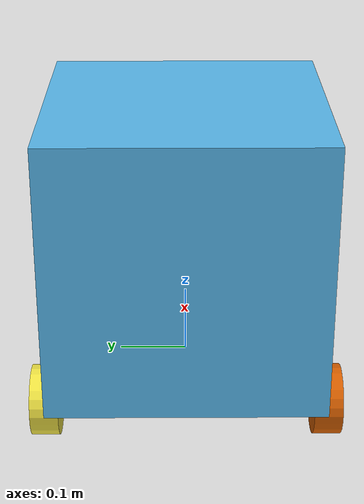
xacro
<?xml version="1.0"?>
<robot xmlns:xacro="http://www.ros.org/wiki/xacro">
<link name="base_link">
</link>
<joint name="chassis_joint" type="fixed">
    <parent link="base_link"/>
    <child link="chassis"/>
    <origin xyz="-0.2 0 0"/>
</joint>

<link name="chassis">
    <visual>
        <origin xyz="0.2 0 0.2" rpy="0 0 0"/>
        <geometry>
            <box size="0.4 0.4 0.4"/>
        </geometry>
    </visual>
    <collision>
        <origin xyz="0.2 0 0.2" rpy="0 0 0"/>
        <geometry>
            <box size="0.4 0.4 0.4"/>
        </geometry>
    </collision>
</link>

<!-- LEFT FRONT WHEEL -->

<joint name="left_front_wheel_joint" type="continuous">
    <parent link="base_link"/>
    <child link="left_front_wheel"/>
    <origin xyz="0.15 0.2 0" rpy="-${pi/2} 0 0"/>
    <axis xyz="0 0 1"/>
</joint>

<link name="left_front_wheel">
    <visual>
        <geometry>
            <cylinder length="0.04" radius="0.05" />/>
        </geometry>
    </visual>
</link>

<!-- LEFT BACK WHEEL -->

<joint name="left_back_wheel_joint" type="continuous">
    <parent link="base_link"/>
    <child link="left_back_wheel"/>
    <origin xyz="-0.15 0.2 0" rpy="-${pi/2} 0 0"/>
    <axis xyz="0 0 1"/>
</joint>

<link name="left_back_wheel">
    <visual>
        <geometry>
            <cylinder length="0.04" radius="0.05" />/>
        </geometry>
    </visual>
</link>

<!-- RIGHT FRONT WHEEL -->

<joint name="right_front_wheel_joint" type="continuous">
    <parent link="base_link"/>
    <child link="right_front_wheel"/>
    <origin xyz="0.15 -0.2 0" rpy="${pi/2} 0 0"/>
    <axis xyz="0 0 -1"/>
</joint>

<link name="right_front_wheel">
    <visual>
        <geometry>
            <cylinder length="0.04" radius="0.05" />/>
        </geometry>
    </visual>
</link>

<!-- RIGHT FRONT WHEEL -->

<joint name="right_back_wheel_joint" type="continuous">
    <parent link="base_link"/>
    <child link="right_back_wheel"/>
    <origin xyz="-0.15 -0.2 0" rpy="${pi/2} 0 0"/>
    <axis xyz="0 0 -1"/>
</joint>

<link name="right_back_wheel">
    <visual>
        <geometry>
            <cylinder length="0.04" radius="0.05" />/>
        </geometry>
    </visual>
</link>

</robot>
